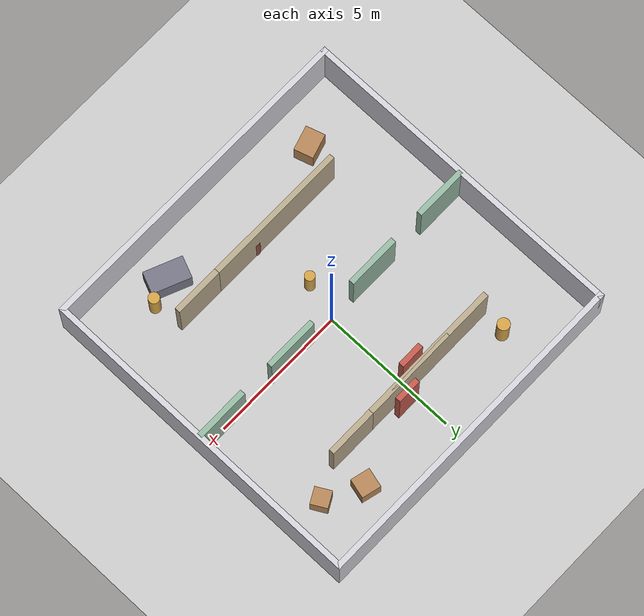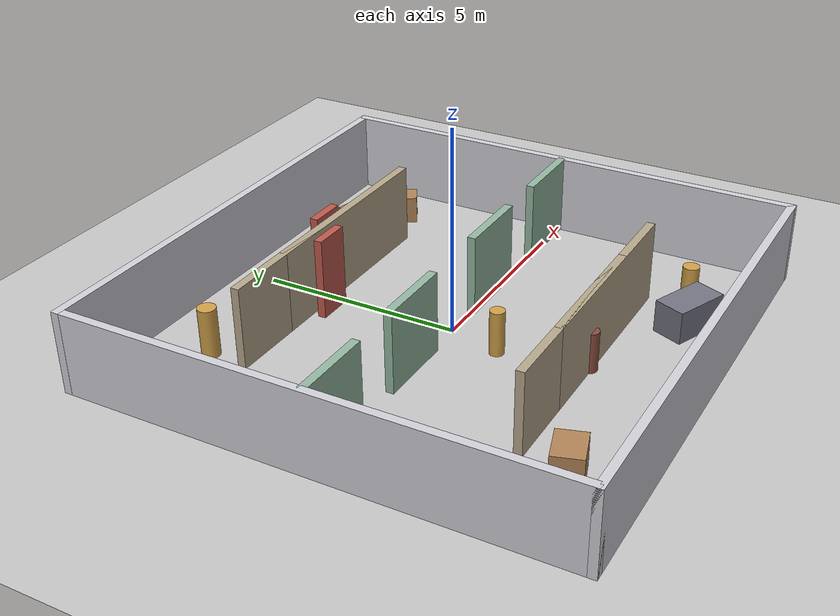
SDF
<?xml version="1.0" ?>
<sdf version="1.9">
  <world name="testworld_v1">
    <gravity>0 0 -9.81</gravity>
    <physics name="1ms" type="ignored">
      <max_step_size>0.010</max_step_size>
      <real_time_factor>1.0</real_time_factor>
    </physics>

    <plugin
      filename="gz-sim-physics-system"
      name="gz::sim::systems::Physics" />
    <plugin
      filename="gz-sim-user-commands-system"
      name="gz::sim::systems::UserCommands" />
    <plugin
      filename="gz-sim-scene-broadcaster-system"
      name="gz::sim::systems::SceneBroadcaster" />
    <plugin
      filename="gz-sim-contact-system"
      name="gz::sim::systems::Contact" />
    <plugin
      filename="gz-sim-imu-system"
      name="gz::sim::systems::Imu" />
    <plugin
      filename="gz-sim-sensors-system"
      name="gz::sim::systems::Sensors">
      <render_engine>ogre2</render_engine>
    </plugin>

    <light name="sun" type="directional">
      <cast_shadows>false</cast_shadows>
      <pose>0 0 12 0 0 0</pose>
      <diffuse>0.8 0.8 0.8 1</diffuse>
      <specular>0.2 0.2 0.2 1</specular>
      <attenuation>
        <range>1000</range>
        <constant>0.9</constant>
        <linear>0.01</linear>
        <quadratic>0.001</quadratic>
      </attenuation>
      <direction>-0.5 0.1 -0.9</direction>
    </light>

    <model name="ground_plane">
      <static>true</static>
      <link name="link">
        <collision name="collision">
          <geometry>
            <plane>
              <normal>0 0 1</normal>
              <size>60 60</size>
            </plane>
          </geometry>
        </collision>
        <visual name="visual">
          <geometry>
            <plane>
              <normal>0 0 1</normal>
              <size>60 60</size>
            </plane>
          </geometry>
          <material>
            <ambient>0.78 0.78 0.78 1</ambient>
            <diffuse>0.78 0.78 0.78 1</diffuse>
          </material>
        </visual>
      </link>
    </model>

    <!-- ============ Outer walls (closed, 12x12 m) ============ -->
    <model name="outer_wall_north">
      <static>true</static>
      <pose>0 6 1 0 0 0</pose>
      <link name="link">
        <collision name="collision">
          <geometry><box><size>12.2 0.2 2.0</size></box></geometry>
        </collision>
        <visual name="visual">
          <geometry><box><size>12.2 0.2 2.0</size></box></geometry>
          <material><ambient>0.82 0.82 0.85 1</ambient><diffuse>0.82 0.82 0.85 1</diffuse></material>
        </visual>
      </link>
    </model>

    <model name="outer_wall_south">
      <static>true</static>
      <pose>0 -6 1 0 0 0</pose>
      <link name="link">
        <collision name="collision">
          <geometry><box><size>12.2 0.2 2.0</size></box></geometry>
        </collision>
        <visual name="visual">
          <geometry><box><size>12.2 0.2 2.0</size></box></geometry>
          <material><ambient>0.82 0.82 0.85 1</ambient><diffuse>0.82 0.82 0.85 1</diffuse></material>
        </visual>
      </link>
    </model>

    <model name="outer_wall_east">
      <static>true</static>
      <pose>6 0 1 0 0 0</pose>
      <link name="link">
        <collision name="collision">
          <geometry><box><size>0.2 12.2 2.0</size></box></geometry>
        </collision>
        <visual name="visual">
          <geometry><box><size>0.2 12.2 2.0</size></box></geometry>
          <material><ambient>0.82 0.82 0.85 1</ambient><diffuse>0.82 0.82 0.85 1</diffuse></material>
        </visual>
      </link>
    </model>

    <model name="outer_wall_west">
      <static>true</static>
      <pose>-6 0 1 0 0 0</pose>
      <link name="link">
        <collision name="collision">
          <geometry><box><size>0.2 12.2 2.0</size></box></geometry>
        </collision>
        <visual name="visual">
          <geometry><box><size>0.2 12.2 2.0</size></box></geometry>
          <material><ambient>0.82 0.82 0.85 1</ambient><diffuse>0.82 0.82 0.85 1</diffuse></material>
        </visual>
      </link>
    </model>

    <!-- ============ Central north-south corridor: partition walls to the rooms ============ -->
    <!-- West wall of the corridor (x=-0.9), door opening 1.4 m at y in [-0.7, 0.7] -->
    <model name="corridor_wall_west_south">
      <static>true</static>
      <pose>-0.9 -3.35 1 0 0 1.5708</pose>
      <link name="link">
        <collision name="collision"><geometry><box><size>0.2 5.3 2.0</size></box></geometry></collision>
        <visual name="visual">
          <geometry><box><size>0.2 5.3 2.0</size></box></geometry>
          <material><ambient>0.72 0.66 0.55 1</ambient><diffuse>0.72 0.66 0.55 1</diffuse></material>
        </visual>
      </link>
    </model>
    <model name="corridor_wall_west_north">
      <static>true</static>
      <pose>-0.9 3.35 1 0 0 1.5708</pose>
      <link name="link">
        <collision name="collision"><geometry><box><size>0.2 5.3 2.0</size></box></geometry></collision>
        <visual name="visual">
          <geometry><box><size>0.2 5.3 2.0</size></box></geometry>
          <material><ambient>0.72 0.66 0.55 1</ambient><diffuse>0.72 0.66 0.55 1</diffuse></material>
        </visual>
      </link>
    </model>

    <!-- East wall of the corridor (x=0.9), door opening 1.4 m at y in [-0.7, 0.7] -->
    <model name="corridor_wall_east_south">
      <static>true</static>
      <pose>0.9 -3.35 1 0 0 1.5708</pose>
      <link name="link">
        <collision name="collision"><geometry><box><size>0.2 5.3 2.0</size></box></geometry></collision>
        <visual name="visual">
          <geometry><box><size>0.2 5.3 2.0</size></box></geometry>
          <material><ambient>0.72 0.66 0.55 1</ambient><diffuse>0.72 0.66 0.55 1</diffuse></material>
        </visual>
      </link>
    </model>
    <model name="corridor_wall_east_north">
      <static>true</static>
      <pose>0.9 3.35 1 0 0 1.5708</pose>
      <link name="link">
        <collision name="collision"><geometry><box><size>0.2 5.3 2.0</size></box></geometry></collision>
        <visual name="visual">
          <geometry><box><size>0.2 5.3 2.0</size></box></geometry>
          <material><ambient>0.72 0.66 0.55 1</ambient><diffuse>0.72 0.66 0.55 1</diffuse></material>
        </visual>
      </link>
    </model>

    <!-- Narrow section (chicane) in the corridor at y in [2.9, 3.8]: two offset
         stubs narrow the 1.8 m corridor width to ~0.9 m remaining width. -->
    <model name="chicane_stub_west">
      <static>true</static>
      <pose>-0.45 3.0 1 0 0 0</pose>
      <link name="link">
        <collision name="collision"><geometry><box><size>0.9 0.2 2.0</size></box></geometry></collision>
        <visual name="visual">
          <geometry><box><size>0.9 0.2 2.0</size></box></geometry>
          <material><ambient>0.75 0.35 0.3 1</ambient><diffuse>0.75 0.35 0.3 1</diffuse></material>
        </visual>
      </link>
    </model>
    <model name="chicane_stub_east">
      <static>true</static>
      <pose>0.45 3.7 1 0 0 0</pose>
      <link name="link">
        <collision name="collision"><geometry><box><size>0.9 0.2 2.0</size></box></geometry></collision>
        <visual name="visual">
          <geometry><box><size>0.9 0.2 2.0</size></box></geometry>
          <material><ambient>0.75 0.35 0.3 1</ambient><diffuse>0.75 0.35 0.3 1</diffuse></material>
        </visual>
      </link>
    </model>

    <!-- ============ Room dividers left (NW/SW) and right (NE/SE), each at y=0,
         door opening 1.2 m ============ -->
    <model name="left_divider_outer">
      <static>true</static>
      <pose>-5.025 0 1 0 0 0</pose>
      <link name="link">
        <collision name="collision"><geometry><box><size>1.95 0.2 2.0</size></box></geometry></collision>
        <visual name="visual">
          <geometry><box><size>1.95 0.2 2.0</size></box></geometry>
          <material><ambient>0.58 0.72 0.63 1</ambient><diffuse>0.58 0.72 0.63 1</diffuse></material>
        </visual>
      </link>
    </model>
    <model name="left_divider_inner">
      <static>true</static>
      <pose>-1.875 0 1 0 0 0</pose>
      <link name="link">
        <collision name="collision"><geometry><box><size>1.95 0.2 2.0</size></box></geometry></collision>
        <visual name="visual">
          <geometry><box><size>1.95 0.2 2.0</size></box></geometry>
          <material><ambient>0.58 0.72 0.63 1</ambient><diffuse>0.58 0.72 0.63 1</diffuse></material>
        </visual>
      </link>
    </model>

    <model name="right_divider_inner">
      <static>true</static>
      <pose>1.875 0 1 0 0 0</pose>
      <link name="link">
        <collision name="collision"><geometry><box><size>1.95 0.2 2.0</size></box></geometry></collision>
        <visual name="visual">
          <geometry><box><size>1.95 0.2 2.0</size></box></geometry>
          <material><ambient>0.58 0.72 0.63 1</ambient><diffuse>0.58 0.72 0.63 1</diffuse></material>
        </visual>
      </link>
    </model>
    <model name="right_divider_outer">
      <static>true</static>
      <pose>5.025 0 1 0 0 0</pose>
      <link name="link">
        <collision name="collision"><geometry><box><size>1.95 0.2 2.0</size></box></geometry></collision>
        <visual name="visual">
          <geometry><box><size>1.95 0.2 2.0</size></box></geometry>
          <material><ambient>0.58 0.72 0.63 1</ambient><diffuse>0.58 0.72 0.63 1</diffuse></material>
        </visual>
      </link>
    </model>

    <!-- ============ Scattered obstacles ============ -->
    <model name="pillar_nw">
      <static>true</static>
      <pose>-3.4 4.3 0.6 0 0 0</pose>
      <link name="link">
        <collision name="collision"><geometry><cylinder><radius>0.22</radius><length>1.2</length></cylinder></geometry></collision>
        <visual name="visual">
          <geometry><cylinder><radius>0.22</radius><length>1.2</length></cylinder></geometry>
          <material><ambient>0.82 0.63 0.28 1</ambient><diffuse>0.82 0.63 0.28 1</diffuse></material>
        </visual>
      </link>
    </model>

    <model name="pillar_se">
      <static>true</static>
      <pose>3.6 -4.4 0.55 0 0 0</pose>
      <link name="link">
        <collision name="collision"><geometry><cylinder><radius>0.20</radius><length>1.1</length></cylinder></geometry></collision>
        <visual name="visual">
          <geometry><cylinder><radius>0.20</radius><length>1.1</length></cylinder></geometry>
          <material><ambient>0.82 0.63 0.28 1</ambient><diffuse>0.82 0.63 0.28 1</diffuse></material>
        </visual>
      </link>
    </model>

    <model name="crate_sw">
      <static>true</static>
      <pose>-3.7 -4.5 0.4 0 0 0.3</pose>
      <link name="link">
        <collision name="collision"><geometry><box><size>0.9 0.7 0.8</size></box></geometry></collision>
        <visual name="visual">
          <geometry><box><size>0.9 0.7 0.8</size></box></geometry>
          <material><ambient>0.7 0.52 0.34 1</ambient><diffuse>0.7 0.52 0.34 1</diffuse></material>
        </visual>
      </link>
    </model>

    <model name="crate_ne_a">
      <static>true</static>
      <pose>3.3 4.6 0.35 0 0 -0.25</pose>
      <link name="link">
        <collision name="collision"><geometry><box><size>0.7 0.7 0.7</size></box></geometry></collision>
        <visual name="visual">
          <geometry><box><size>0.7 0.7 0.7</size></box></geometry>
          <material><ambient>0.7 0.52 0.34 1</ambient><diffuse>0.7 0.52 0.34 1</diffuse></material>
        </visual>
      </link>
    </model>

    <model name="crate_ne_b">
      <static>true</static>
      <pose>4.6 3.9 0.35 0 0 0.5</pose>
      <link name="link">
        <collision name="collision"><geometry><box><size>0.6 0.6 0.7</size></box></geometry></collision>
        <visual name="visual">
          <geometry><box><size>0.6 0.6 0.7</size></box></geometry>
          <material><ambient>0.7 0.52 0.34 1</ambient><diffuse>0.7 0.52 0.34 1</diffuse></material>
        </visual>
      </link>
    </model>

    <model name="loading_table_se">
      <static>true</static>
      <pose>2.7 -4.7 0.4 0 0 -0.4</pose>
      <link name="link">
        <collision name="collision"><geometry><box><size>1.4 0.8 0.8</size></box></geometry></collision>
        <visual name="visual">
          <geometry><box><size>1.4 0.8 0.8</size></box></geometry>
          <material><ambient>0.46 0.46 0.52 1</ambient><diffuse>0.46 0.46 0.52 1</diffuse></material>
        </visual>
      </link>
    </model>

    <model name="corridor_barrel">
      <static>true</static>
      <pose>0 -3.4 0.5 0 0 0</pose>
      <link name="link">
        <collision name="collision"><geometry><cylinder><radius>0.18</radius><length>1.0</length></cylinder></geometry></collision>
        <visual name="visual">
          <geometry><cylinder><radius>0.18</radius><length>1.0</length></cylinder></geometry>
          <material><ambient>0.55 0.3 0.25 1</ambient><diffuse>0.55 0.3 0.25 1</diffuse></material>
        </visual>
      </link>
    </model>

    <model name="pillar_sw_corridor">
      <static>true</static>
      <pose>-0.35 -1.3 0.55 0 0 0</pose>
      <link name="link">
        <collision name="collision"><geometry><cylinder><radius>0.18</radius><length>1.1</length></cylinder></geometry></collision>
        <visual name="visual">
          <geometry><cylinder><radius>0.18</radius><length>1.1</length></cylinder></geometry>
          <material><ambient>0.82 0.63 0.28 1</ambient><diffuse>0.82 0.63 0.28 1</diffuse></material>
        </visual>
      </link>
    </model>
  </world>
</sdf>
